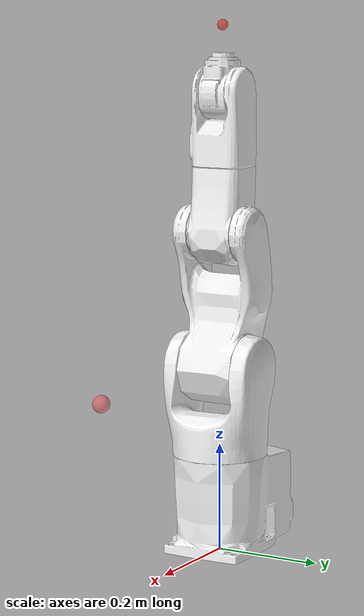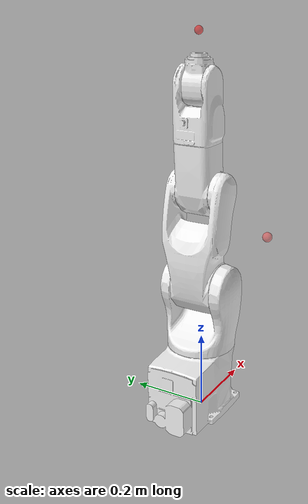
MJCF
<mujoco model="vs050_reach">
  <!--
    Reach scene: VS050 arm on a floor plane.
    Used by the VS050-ReachPose-v0 environment.
    Target goals are set programmatically in the environment code.
  -->

  <include file="vs050.xml"/>

  <visual>
    <headlight diffuse="0.6 0.6 0.6" ambient="0.3 0.3 0.3" specular="0 0 0"/>
  </visual>

  <asset>
    <material name="mat_target" rgba="1 0.3 0.3 0.5" specular="0" shininess="0"/>
  </asset>

  <worldbody>
    <!-- Translucent red sphere to visualize the goal -->
    <geom name="target_marker"
          pos="0.4 0 0.35"
          type="sphere"
          size="0.015"
          material="mat_target"
          contype="0" conaffinity="0" group="2"/>

    <!-- Visual site at the same location for distance queries -->
    <site name="target_site"
          pos="0.4 0 0.35"
          size="0.015"
          rgba="1 0.3 0.3 0.3"
          type="sphere"/>
  </worldbody>
</mujoco>

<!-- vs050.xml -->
<mujoco model="vs050">

  <compiler angle="radian" meshdir="assets"/>

  <option timestep="0.002" gravity="0 0 -9.81"/>

  <asset>
    <texture name="texplane" type="2d" builtin="checker" rgb1=".2 .3 .4" rgb2=".1 0.15 0.2" width="512" height="512" mark="cross" markrgb=".8 .8 .8"/>
    <material name="matplane" reflectance="0.3" texture="texplane" texrepeat="1 1" texuniform="true"/>
    <material name="matarm" rgba="0.95 0.95 0.95 1" specular="0.5" shininess="0.5"/>

    <mesh name="base_link" file="base_link.obj"/>
    <mesh name="J1"        file="J1.obj"/>
    <mesh name="J2"        file="J2.obj"/>
    <mesh name="J3"        file="J3.obj"/>
    <mesh name="J4"        file="J4.obj"/>
    <mesh name="J5"        file="J5.obj"/>
    <mesh name="J6"        file="J6.obj"/>
  </asset>

  <default>
    <joint limited="true" damping="0.5" armature="0.01" frictionloss="0.1"/>
    <default class="visual">
      <geom type="mesh" contype="0" conaffinity="0" group="2" material="matarm"/>
    </default>
    <default class="collision">
      <geom type="mesh" group="3"/>
    </default>
    <position kp="500" kv="50" ctrllimited="true"/>
  </default>

  <worldbody>
    <light pos="0 0 1.5" dir="0 0 -1" directional="true"/>

    <!-- Robot fixed to world -->
    <body name="base_link" pos="0 0 0">
      <geom mesh="base_link" class="visual" name="base_link_visual"/>
      <geom mesh="base_link" class="collision" name="base_link_collision"/>
      <inertial pos="0 0 0" mass="5.0"
                diaginertia="0.05 0.05 0.05"/>

      <body name="J1" pos="0 0 0.1815">
        <joint name="joint_1" type="hinge" axis="0 0 1"
               range="-2.96705972839036 2.96705972839036"
               actuatorfrcrange="-200 200"/>
        <geom mesh="J1" class="visual" name="J1_visual"/>
        <geom mesh="J1" class="collision" name="J1_collision"/>
        <inertial pos="0 0 0" mass="4.0"
                  diaginertia="0.04 0.04 0.04"/>

        <body name="J2" pos="0 0 0.1635">
          <joint name="joint_2" type="hinge" axis="0 1 0"
                 range="-2.0943951023932 2.0943951023932"
                 actuatorfrcrange="-200 200"/>
          <geom mesh="J2" class="visual" name="J2_visual"/>
          <geom mesh="J2" class="collision" name="J2_collision"/>
          <inertial pos="0 0 0" mass="3.5"
                    diaginertia="0.035 0.035 0.035"/>

          <body name="J3" pos="0 0 0.25">
            <joint name="joint_3" type="hinge" axis="0 1 0"
                   range="-2.18166156499291 2.70526034059121"
                   actuatorfrcrange="-150 150"/>
            <geom mesh="J3" class="visual" name="J3_visual"/>
            <geom mesh="J3" class="collision" name="J3_collision"/>
            <inertial pos="0 0 0" mass="2.5"
                      diaginertia="0.025 0.025 0.025"/>

            <body name="J4" pos="-0.01 0 0.1195">
              <joint name="joint_4" type="hinge" axis="0 0 1"
                     range="-4.71238898038469 4.71238898038469"
                     actuatorfrcrange="-100 100"/>
              <geom mesh="J4" class="visual" name="J4_visual"/>
              <geom mesh="J4" class="collision" name="J4_collision"/>
              <inertial pos="0 0 0" mass="1.5"
                        diaginertia="0.015 0.015 0.015"/>

              <body name="J5" pos="0 0 0.1355">
                <joint name="joint_5" type="hinge" axis="0 1 0"
                       range="-2.0943951023932 2.0943951023932"
                       actuatorfrcrange="-80 80"/>
                <geom mesh="J5" class="visual" name="J5_visual"/>
                <geom mesh="J5" class="collision" name="J5_collision"/>
                <inertial pos="0 0 0" mass="1.0"
                          diaginertia="0.01 0.01 0.01"/>

                <body name="J6" pos="0 0 0.07">
                  <joint name="joint_6" type="hinge" axis="0 0 1"
                         range="-6.28318530717959 6.28318530717959"
                         actuatorfrcrange="-50 50"/>
                  <geom mesh="J6" class="visual" name="J6_visual"/>
                  <geom mesh="J6" class="collision" name="J6_collision"/>
                  <inertial pos="0 0 0" mass="0.5"
                            diaginertia="0.005 0.005 0.005"/>

                  <!-- End-effector site -->
                  <site name="attachment_site" pos="0 0 0.05"
                        quat="1 0 0 0" size="0.01" rgba="1 0 0 0.5"/>
                </body>
              </body>
            </body>
          </body>
        </body>
      </body>
    </body>
  </worldbody>

  <!-- Position-controlled actuators (one per joint) -->
  <actuator>
    <position name="act_joint_1" joint="joint_1"
              ctrlrange="-2.96705972839036 2.96705972839036"
              kp="500" kv="50"/>
    <position name="act_joint_2" joint="joint_2"
              ctrlrange="-2.0943951023932 2.0943951023932"
              kp="500" kv="50"/>
    <position name="act_joint_3" joint="joint_3"
              ctrlrange="-2.18166156499291 2.70526034059121"
              kp="500" kv="50"/>
    <position name="act_joint_4" joint="joint_4"
              ctrlrange="-4.71238898038469 4.71238898038469"
              kp="300" kv="30"/>
    <position name="act_joint_5" joint="joint_5"
              ctrlrange="-2.0943951023932 2.0943951023932"
              kp="200" kv="20"/>
    <position name="act_joint_6" joint="joint_6"
              ctrlrange="-6.28318530717959 6.28318530717959"
              kp="100" kv="10"/>
  </actuator>

  <!-- Home keyframe: joints at initial_positions.yaml values -->
  <keyframe>
    <key name="home"
         qpos="0 0 1.5707963267948966 0 0 0"
         ctrl="0 0 1.5707963267948966 0 0 0"/>
  </keyframe>

</mujoco>
